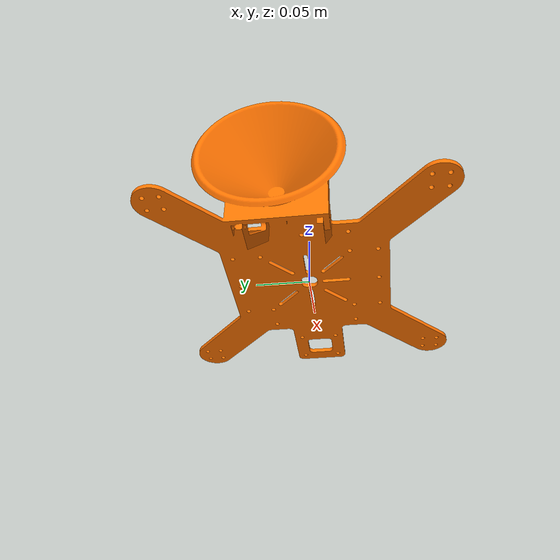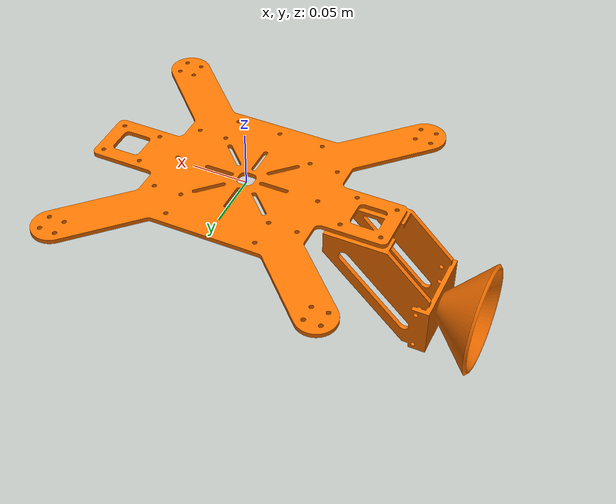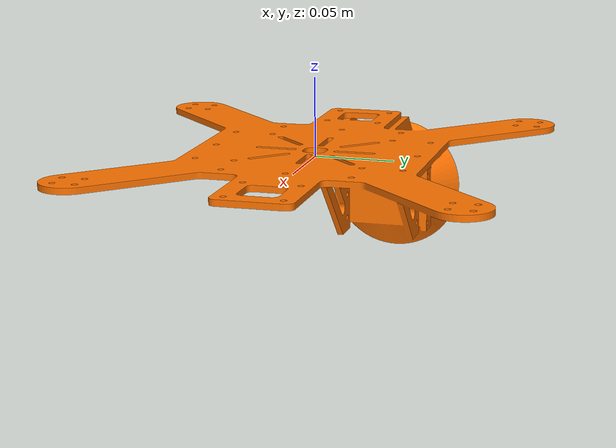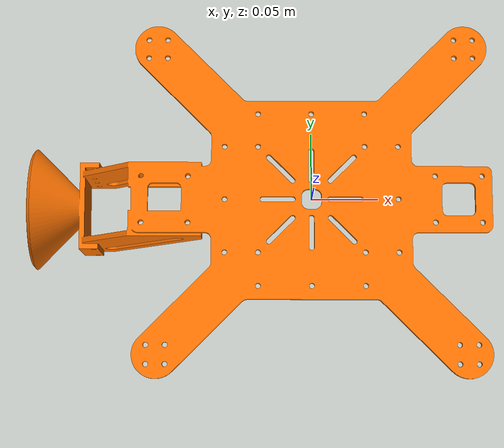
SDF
<?xml version="1.0"?>
<sdf version="1.9">
  <model name="female_drone">
    <static>false</static>
    <link name="base_link">

      <visual name="visual">
        <geometry>
          <mesh>
            <uri>model://female_drone/meshes/FemaleDrone.stl</uri>
            <scale>0.001 0.001 0.001</scale>
          </mesh>
        </geometry>
        <material>
          <ambient>1 0.45 0 1</ambient>
          <diffuse>1 0.45 0 1</diffuse>
        </material>
      </visual>

      <collision name="collision">
        <geometry>
          <mesh>
            <uri>model://female_drone/meshes/FemaleDrone.stl</uri>
            <scale>0.001 0.001 0.001</scale>
          </mesh>
        </geometry>
      </collision>

    </link>
  </model>
</sdf>
